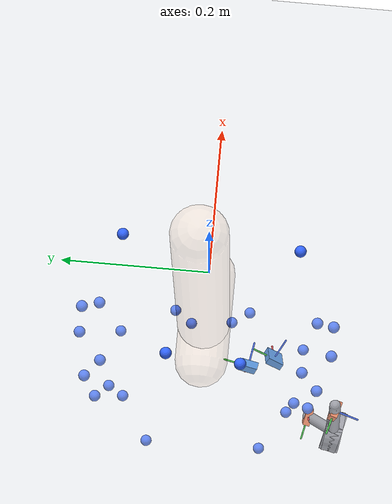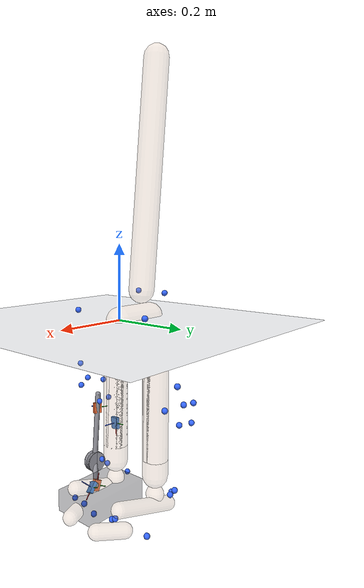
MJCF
<mujoco model="AB16">
  <compiler angle="radian" autolimits="true"/>
  <option timestep="0.005" gravity="0 0 -9.81"><flag contact="disable"/></option>
  <visual><global offwidth="1600" offheight="1200"/>
    <headlight ambient="0.55 0.55 0.55" diffuse="0.6 0.6 0.6"/></visual>
  <default><joint limited="false" damping="0"/><geom contype="0" conaffinity="0"/></default>
  <asset>
    <texture name="grid" type="2d" builtin="checker" rgb1="0.75 0.77 0.8" rgb2="0.85 0.87 0.9" width="512" height="512"/>
    <material name="grid" texture="grid" texrepeat="2 2" texuniform="true"/>
    <material name="skin" rgba="0.85 0.72 0.62 0.28"/>
  </asset>
  <worldbody>
    <light pos="0 0 4" dir="0 0 -1"/>
    <geom name="floor" type="plane" size="0 0 0.05" material="grid"/>
    <body name="pelvis" pos="0 0 0" quat="1 0 0 0">
      <joint name="pelvis_tx" type="slide" axis="1 0 0"/>
      <joint name="pelvis_ty" type="slide" axis="0 0 1"/>
      <joint name="pelvis_tz" type="slide" axis="0 -1 0"/>
      <joint name="pelvis_tilt" type="hinge" axis="0 -1 0"/>
      <joint name="pelvis_list" type="hinge" axis="1 0 0"/>
      <joint name="pelvis_rotation" type="hinge" axis="0 0 1"/>
      <inertial pos="-0.061785257 0 0" mass="8.62303" diaginertia="0.086230327 0.086230327 0.086230327"/>
      <geom type="capsule" fromto="0 0 0 -0.12357051 0 0" size="0.035" material="skin" mass="0"/>
      <site name="m_R_ASIS" pos="0.035348723 -0.11986572 0.018933387" size="0.008" rgba="0.2 0.4 1 1" group="2"/>
      <site name="m_L_ASIS" pos="0.037436552 0.11958289 0.022082697" size="0.008" rgba="0.2 0.4 1 1" group="2"/>
      <site name="m_L_PSIS" pos="-0.13186088 0.046029131 0.063772759" size="0.008" rgba="0.2 0.4 1 1" group="2"/>
      <site name="m_R_PSIS" pos="-0.1375951 -0.053068124 0.062888783" size="0.008" rgba="0.2 0.4 1 1" group="2"/>
      <body name="femur_r" pos="-0.061785257 -0.072971272 -0.057765282" quat="1 0 0 0">
        <joint name="hip_flexion_r" type="hinge" axis="0 -1 0"/>
        <joint name="hip_adduction_r" type="hinge" axis="1 0 0"/>
        <joint name="hip_rotation_r" type="hinge" axis="0 0 1"/>
        <inertial pos="0 0 -0.15945939" mass="6.81042" diaginertia="0.068104166 0.068104166 0.068104166"/>
        <geom type="capsule" fromto="0 0 0 0 0 -0.31891877" size="0.035" material="skin" mass="0"/>
        <site name="m_R_Thigh_Upper" pos="0.04075405 -0.10193413 -0.092389746" size="0.008" rgba="0.2 0.4 1 1" group="2"/>
        <site name="m_R_Thigh_Front" pos="0.059029638 -0.079564574 -0.14869617" size="0.008" rgba="0.2 0.4 1 1" group="2"/>
        <site name="m_R_Thigh_Rear" pos="0.011696705 -0.10255957 -0.14149905" size="0.008" rgba="0.2 0.4 1 1" group="2"/>
        <site name="m_R_Knee_Lat" pos="-0.0014357964 -0.057007593 -0.38355226" size="0.008" rgba="0.2 0.4 1 1" group="2"/>
        <body name="tibia_r" pos="0 0 0" quat="1 0 0 0">
<geom name="gt_shank_axis_x" type="capsule" size="0.0012" fromto="0.01420 0.01240 -0.24920 0.01467 0.01677 -0.28392" rgba="1 0.1 0.1 1" contype="0" conaffinity="0" mass="0"/>
<geom name="gt_shank_axis_y" type="capsule" size="0.0012" fromto="0.01420 0.01240 -0.24920 0.02005 0.04663 -0.24481" rgba="0.1 0.8 0.1 1" contype="0" conaffinity="0" mass="0"/>
<geom name="gt_shank_axis_z" type="capsule" size="0.0012" fromto="0.01420 0.01240 -0.24920 0.04870 0.00653 -0.24947" rgba="0.1 0.3 1 1" contype="0" conaffinity="0" mass="0"/>
<geom name="exo_shank_axis_x" type="capsule" size="0.0012" fromto="-0.03939 -0.11520 -0.24946 -0.04205 -0.11985 -0.21487" rgba="1 0.1 0.1 1" contype="0" conaffinity="0" mass="0"/>
<geom name="exo_shank_axis_y" type="capsule" size="0.0012" fromto="-0.03939 -0.11520 -0.24946 -0.07311 -0.10594 -0.25080" rgba="0.1 0.8 0.1 1" contype="0" conaffinity="0" mass="0"/>
<geom name="exo_shank_axis_z" type="capsule" size="0.0012" fromto="-0.03939 -0.11520 -0.24946 -0.04837 -0.14863 -0.25464" rgba="0.1 0.3 1 1" contype="0" conaffinity="0" mass="0"/>
<geom name="encoder_shank" type="cylinder" size="0.03 0.012" fromto="-0.03264 -0.12963 -0.41865 -0.02696 -0.10637 -0.41715" rgba="0.55 0.55 0.58 1" contype="0" conaffinity="0" mass="0"/>
<geom name="strut_shank" type="capsule" size="0.008" fromto="-0.02980 -0.11800 -0.41790 -0.04178 -0.11450 -0.20734" rgba="0.55 0.55 0.58 1" contype="0" conaffinity="0" mass="0"/>
          <joint name="knee_r_translation1" type="slide" axis="1 0 0"/>
          <joint name="knee_r_translation2" type="slide" axis="0 0 1"/>
          <joint name="knee_angle_r" type="hinge" axis="0 -1 0"/>
          <inertial pos="0 0 -0.18142721" mass="2.7146" diaginertia="0.027146042 0.027146042 0.027146042"/>
          <geom type="capsule" fromto="0 0 0 0 0 -0.36285443" size="0.035" material="skin" mass="0"/>
          <site name="m_R_Shank_Upper" pos="-0.036442969 -0.086248941 -0.15431588" size="0.008" rgba="0.2 0.4 1 1" group="2"/>
          <site name="m_R_Shank_Front" pos="0.0010844908 -0.063969468 -0.20759272" size="0.008" rgba="0.2 0.4 1 1" group="2"/>
          <site name="m_R_Shank_Rear" pos="-0.048831589 -0.076379057 -0.20970151" size="0.008" rgba="0.2 0.4 1 1" group="2"/>
          <site name="m_R_Ankle_Lat" pos="-0.012869413 -0.046745462 -0.39656626" size="0.008" rgba="0.2 0.4 1 1" group="2"/>
          <site name="gt_shank_imu" type="box" size="0.016 0.012 0.005" pos="0.0142 0.0124 -0.2492" quat="0.70422216 0.10400938 0.7021592 -0.015021806" rgba="0.16 0.47 0.84 1" group="1"/>
          <site name="exo_shank_imu" type="box" size="0.016 0.012 0.005" pos="-0.039385 -0.115204 -0.249455" quat="-0.51007838 -0.44922165 0.61010989 -0.40716811" rgba="0.92 0.41 0.20 1" group="1"/>
          <body name="talus_r" pos="0 0 -0.41785593" quat="1 0 0 0">
            <joint name="ankle_angle_r" type="hinge" axis="-0.10501355 -0.97912632 -0.17402245"/>
            <inertial pos="0 0 0" mass="0.0732193" diaginertia="0.00073219264 0.00073219264 0.00073219264"/>
            <geom type="sphere" size="0.025" material="skin" mass="0"/>
            <body name="calcn_r" pos="-0.047392636 -0.0076963231 -0.040765247" quat="1 0 0 0">
<geom name="gt_foot_axis_x" type="capsule" size="0.0012" fromto="0.12150 -0.01470 0.02810 0.14587 -0.01066 0.00331" rgba="1 0.1 0.1 1" contype="0" conaffinity="0" mass="0"/>
<geom name="gt_foot_axis_y" type="capsule" size="0.0012" fromto="0.12150 -0.01470 0.02810 0.13017 0.01637 0.04168" rgba="0.1 0.8 0.1 1" contype="0" conaffinity="0" mass="0"/>
<geom name="gt_foot_axis_z" type="capsule" size="0.0012" fromto="0.12150 -0.01470 0.02810 0.14508 -0.03030 0.04874" rgba="0.1 0.3 1 1" contype="0" conaffinity="0" mass="0"/>
<geom name="exo_foot_axis_x" type="capsule" size="0.0012" fromto="0.04936 -0.07216 -0.01213 0.03602 -0.07332 0.02021" rgba="1 0.1 0.1 1" contype="0" conaffinity="0" mass="0"/>
<geom name="exo_foot_axis_y" type="capsule" size="0.0012" fromto="0.04936 -0.07216 -0.01213 0.01762 -0.06489 -0.02496" rgba="0.1 0.8 0.1 1" contype="0" conaffinity="0" mass="0"/>
<geom name="exo_foot_axis_z" type="capsule" size="0.0012" fromto="0.04936 -0.07216 -0.01213 0.04307 -0.10638 -0.01595" rgba="0.1 0.3 1 1" contype="0" conaffinity="0" mass="0"/>
<geom name="encoder_foot" type="cylinder" size="0.03 0.012" fromto="0.01604 -0.12218 0.04018 0.01916 -0.09842 0.04142" rgba="0.55 0.55 0.58 1" contype="0" conaffinity="0" mass="0"/>
<geom name="strut_foot" type="capsule" size="0.008" fromto="0.01760 -0.11030 0.04080 0.04936 -0.07216 -0.01213" rgba="0.55 0.55 0.58 1" contype="0" conaffinity="0" mass="0"/>
<geom name="shoe" type="box" pos="0.09536 -0.00320 0.00261" size="0.10369 0.06420 0.03000" rgba="0.15 0.15 0.18 0.35" contype="0" conaffinity="0" mass="0"/>
              <joint name="subtalar_angle_r" type="hinge" axis="0.78717961 0.12094949 0.60474746"/>
              <inertial pos="0.098661092 0 0.029598328" mass="0.915241" diaginertia="0.009152408 0.009152408 0.009152408"/>
              <geom type="capsule" fromto="0 0 0 0.19732218 0 0.059196655" size="0.02" material="skin" mass="0"/>
              <site name="m_R_Heel" pos="-0.015331036 -0.0038245746 0.030106624" size="0.008" rgba="0.2 0.4 1 1" group="2"/>
              <site name="m_R_Toe_Lat" pos="0.14760552 -0.056780153 -0.0073854545" size="0.008" rgba="0.2 0.4 1 1" group="2"/>
              <site name="m_R_Toe_Med" pos="0.17807591 0.051619498 -0.00056824827" size="0.008" rgba="0.2 0.4 1 1" group="2"/>
              <site name="m_R_Toe_Tip" pos="0.18905266 0.026243626 0.02253281" size="0.008" rgba="0.2 0.4 1 1" group="2"/>
              <site name="gt_foot_imu" type="box" size="0.016 0.012 0.005" pos="0.1215 -0.0147 0.0281" quat="0.89074009 0.23395533 0.38790492 -0.037104924" rgba="0.16 0.47 0.84 1" group="1"/>
              <site name="exo_foot_imu" type="box" size="0.016 0.012 0.005" pos="0.049361 -0.072159 -0.012127" quat="-0.42350383 -0.36070982 0.65154606 -0.51577191" rgba="0.92 0.41 0.20 1" group="1"/>
              <body name="toes_r" pos="0.17640603 -0.0010655398 -0.0019732218" quat="1 0 0 0">
                <joint name="mtp_angle_r" type="hinge" axis="-0.5809544 -0.81393611 0"/>
                <inertial pos="0.034136738 0.017265691 0.0059196655" mass="0.158593" diaginertia="0.0015859293 0.0015859293 0.0015859293"/>
                <geom type="capsule" fromto="0 0 0 0.068273476 0.034531382 0.011839331" size="0.02" material="skin" mass="0"/>
              </body>
            </body>
          </body>
        </body>
      </body>
      <body name="femur_l" pos="-0.061785257 0.072971272 -0.057765282" quat="1 0 0 0">
        <joint name="hip_flexion_l" type="hinge" axis="0 -1 0"/>
        <joint name="hip_adduction_l" type="hinge" axis="-1 0 0"/>
        <joint name="hip_rotation_l" type="hinge" axis="0 0 -1"/>
        <inertial pos="0 0 -0.15945939" mass="6.81042" diaginertia="0.068104166 0.068104166 0.068104166"/>
        <geom type="capsule" fromto="0 0 0 0 0 -0.31891877" size="0.035" material="skin" mass="0"/>
        <site name="m_L_Thigh_Upper" pos="0.039221036 0.10119108 -0.090153234" size="0.008" rgba="0.2 0.4 1 1" group="2"/>
        <site name="m_L_Thigh_Front" pos="0.062360819 0.080547381 -0.15070693" size="0.008" rgba="0.2 0.4 1 1" group="2"/>
        <site name="m_L_Thigh_Rear" pos="0.015686917 0.10377431 -0.14173001" size="0.008" rgba="0.2 0.4 1 1" group="2"/>
        <site name="m_L_Knee_Lat" pos="0.00071348177 0.066992544 -0.38356253" size="0.008" rgba="0.2 0.4 1 1" group="2"/>
        <body name="tibia_l" pos="0 0 0" quat="1 0 0 0">
          <joint name="knee_l_translation1" type="slide" axis="1 0 0"/>
          <joint name="knee_l_translation2" type="slide" axis="0 0 1"/>
          <joint name="knee_angle_l" type="hinge" axis="0 -1 0"/>
          <inertial pos="0 0 -0.18142721" mass="2.7146" diaginertia="0.027146042 0.027146042 0.027146042"/>
          <geom type="capsule" fromto="0 0 0 0 0 -0.36285443" size="0.035" material="skin" mass="0"/>
          <site name="m_L_Shank_Upper" pos="-0.043192989 0.092001599 -0.15394162" size="0.008" rgba="0.2 0.4 1 1" group="2"/>
          <site name="m_L_Shank_Front" pos="-0.0059184949 0.074802367 -0.2078853" size="0.008" rgba="0.2 0.4 1 1" group="2"/>
          <site name="m_L_Shank_Rear" pos="-0.056438201 0.077591211 -0.21481868" size="0.008" rgba="0.2 0.4 1 1" group="2"/>
          <site name="m_L_Ankle_Lat" pos="-0.0071940978 0.046467891 -0.40624043" size="0.008" rgba="0.2 0.4 1 1" group="2"/>
          <body name="talus_l" pos="0 0 -0.41785593" quat="1 0 0 0">
            <joint name="ankle_angle_l" type="hinge" axis="0.10501355 -0.97912632 0.17402245"/>
            <inertial pos="0 0 0" mass="0.0732193" diaginertia="0.00073219264 0.00073219264 0.00073219264"/>
            <geom type="sphere" size="0.025" material="skin" mass="0"/>
            <body name="calcn_l" pos="-0.047392636 0.0076963231 -0.040765247" quat="1 0 0 0">
              <joint name="subtalar_angle_l" type="hinge" axis="-0.78717961 0.12094949 -0.60474746"/>
              <inertial pos="0.098661092 0 0.029598328" mass="0.915241" diaginertia="0.009152408 0.009152408 0.009152408"/>
              <geom type="capsule" fromto="0 0 0 0.19732218 0 0.059196655" size="0.02" material="skin" mass="0"/>
              <site name="m_L_Heel" pos="-0.016940303 -0.00044442608 0.024789852" size="0.008" rgba="0.2 0.4 1 1" group="2"/>
              <site name="m_L_Toe_Lat" pos="0.15225741 0.053268293 -0.0067328972" size="0.008" rgba="0.2 0.4 1 1" group="2"/>
              <site name="m_L_Toe_Med" pos="0.17023741 -0.050213872 0.0037178337" size="0.008" rgba="0.2 0.4 1 1" group="2"/>
              <site name="m_L_Toe_Tip" pos="0.18357597 -0.025664419 0.021079389" size="0.008" rgba="0.2 0.4 1 1" group="2"/>
              <body name="toes_l" pos="0.17640603 0.0010655398 -0.0019732218" quat="1 0 0 0">
                <joint name="mtp_angle_l" type="hinge" axis="0.5809544 -0.81393611 0"/>
                <inertial pos="0.034136738 -0.017265691 0.0059196655" mass="0.158593" diaginertia="0.0015859293 0.0015859293 0.0015859293"/>
                <geom type="capsule" fromto="0 0 0 0.068273476 -0.034531382 0.011839331" size="0.02" material="skin" mass="0"/>
              </body>
            </body>
          </body>
        </body>
      </body>
      <body name="torso" pos="-0.08800248 0 0.071223457" quat="1 0 0 0">
        <joint name="lumbar_extension" type="hinge" axis="0 -1 0"/>
        <joint name="lumbar_bending" type="hinge" axis="1 0 0"/>
        <joint name="lumbar_rotation" type="hinge" axis="0 0 1"/>
        <inertial pos="-0.02946297 0 0.31427168" mass="25.0678" diaginertia="0.25067787 0.25067787 0.25067787"/>
        <geom type="capsule" fromto="0 0 0 -0.058925941 0 0.62854337" size="0.035" material="skin" mass="0"/>
      </body>
    </body>
  </worldbody>
  <sensor>
<accelerometer name="gt_foot_imu_acc" site="gt_foot_imu"/>
<gyro name="gt_foot_imu_gyr" site="gt_foot_imu"/>
<accelerometer name="exo_foot_imu_acc" site="exo_foot_imu"/>
<gyro name="exo_foot_imu_gyr" site="exo_foot_imu"/>
<accelerometer name="gt_shank_imu_acc" site="gt_shank_imu"/>
<gyro name="gt_shank_imu_gyr" site="gt_shank_imu"/>
<accelerometer name="exo_shank_imu_acc" site="exo_shank_imu"/>
<gyro name="exo_shank_imu_gyr" site="exo_shank_imu"/>
</sensor>
</mujoco>
